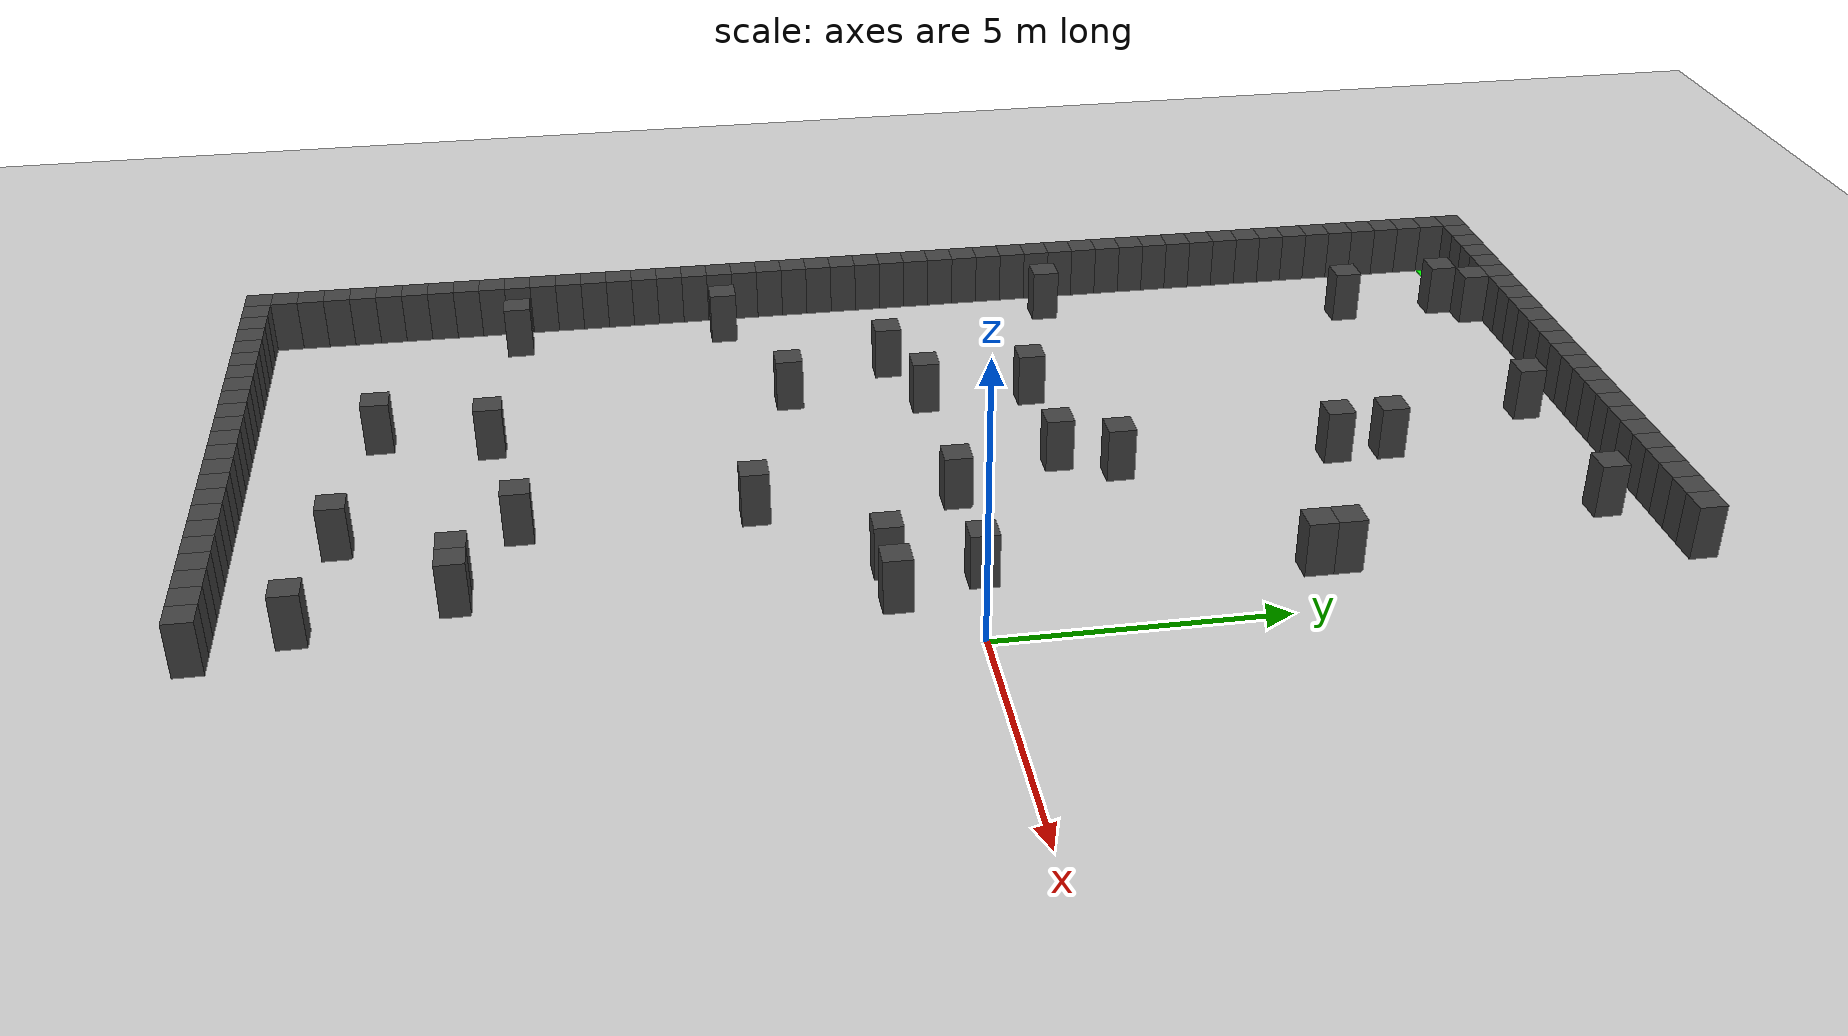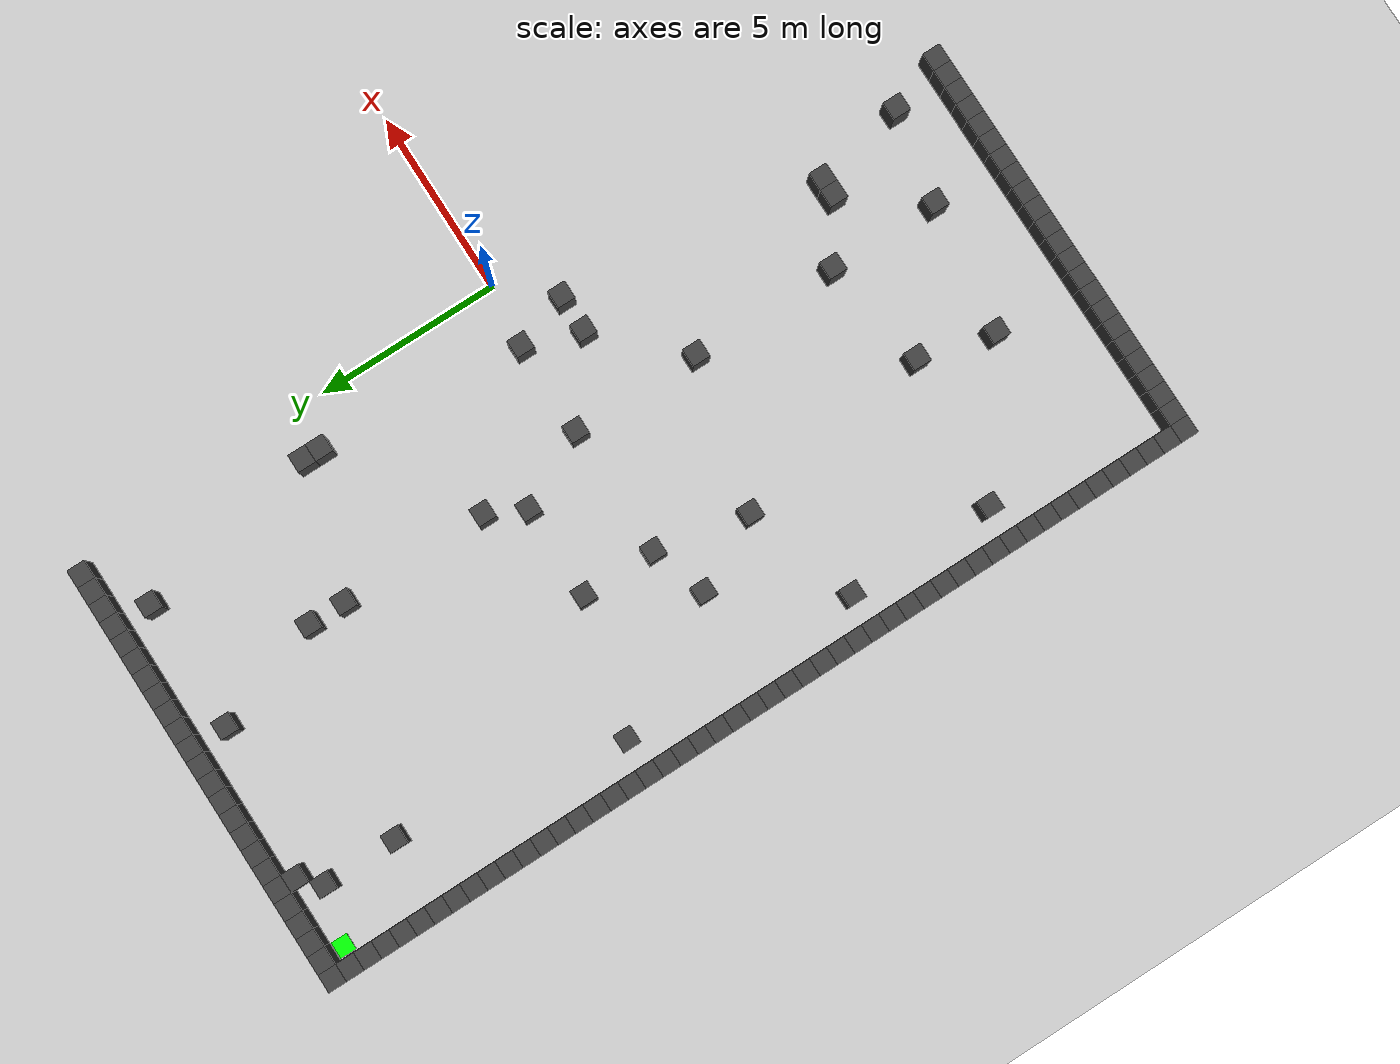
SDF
<sdf version="1.7">
 <world name="map_61">
  <model name="ground_plane">
   <static>true</static>
   <link name="link">
    <collision name="collision">
     <geometry><plane><normal>0 0 1</normal><size>200 200</size></plane></geometry>
    </collision>
    <visual name="visual">
     <geometry><plane><normal>0 0 1</normal><size>200 200</size></plane></geometry>
     <material><ambient>0.8 0.8 0.8 1</ambient><diffuse>0.8 0.8 0.8 1</diffuse></material>
    </visual>
   </link>
  </model>
  <model name="maze_environment">
   <static>true</static>
   <link name="wall_0">
    <pose>-12.250 12.250 0.500 0 0 0</pose>
    <collision name="col"><geometry><box><size>0.5 0.5 1.0</size></box></geometry></collision>
    <visual name="vis">
     <geometry><box><size>0.5 0.5 1.0</size></box></geometry>
     <material><ambient>0.15 0.15 0.15 1</ambient><diffuse>0.25 0.25 0.25 1</diffuse></material>
    </visual>
   </link>
   <link name="wall_1">
    <pose>-11.750 12.250 0.500 0 0 0</pose>
    <collision name="col"><geometry><box><size>0.5 0.5 1.0</size></box></geometry></collision>
    <visual name="vis">
     <geometry><box><size>0.5 0.5 1.0</size></box></geometry>
     <material><ambient>0.15 0.15 0.15 1</ambient><diffuse>0.25 0.25 0.25 1</diffuse></material>
    </visual>
   </link>
   <link name="wall_2">
    <pose>-11.250 12.250 0.500 0 0 0</pose>
    <collision name="col"><geometry><box><size>0.5 0.5 1.0</size></box></geometry></collision>
    <visual name="vis">
     <geometry><box><size>0.5 0.5 1.0</size></box></geometry>
     <material><ambient>0.15 0.15 0.15 1</ambient><diffuse>0.25 0.25 0.25 1</diffuse></material>
    </visual>
   </link>
   <link name="wall_3">
    <pose>-10.750 12.250 0.500 0 0 0</pose>
    <collision name="col"><geometry><box><size>0.5 0.5 1.0</size></box></geometry></collision>
    <visual name="vis">
     <geometry><box><size>0.5 0.5 1.0</size></box></geometry>
     <material><ambient>0.15 0.15 0.15 1</ambient><diffuse>0.25 0.25 0.25 1</diffuse></material>
    </visual>
   </link>
   <link name="wall_4">
    <pose>-10.250 12.250 0.500 0 0 0</pose>
    <collision name="col"><geometry><box><size>0.5 0.5 1.0</size></box></geometry></collision>
    <visual name="vis">
     <geometry><box><size>0.5 0.5 1.0</size></box></geometry>
     <material><ambient>0.15 0.15 0.15 1</ambient><diffuse>0.25 0.25 0.25 1</diffuse></material>
    </visual>
   </link>
   <link name="wall_5">
    <pose>-9.750 12.250 0.500 0 0 0</pose>
    <collision name="col"><geometry><box><size>0.5 0.5 1.0</size></box></geometry></collision>
    <visual name="vis">
     <geometry><box><size>0.5 0.5 1.0</size></box></geometry>
     <material><ambient>0.15 0.15 0.15 1</ambient><diffuse>0.25 0.25 0.25 1</diffuse></material>
    </visual>
   </link>
   <link name="wall_6">
    <pose>-9.250 12.250 0.500 0 0 0</pose>
    <collision name="col"><geometry><box><size>0.5 0.5 1.0</size></box></geometry></collision>
    <visual name="vis">
     <geometry><box><size>0.5 0.5 1.0</size></box></geometry>
     <material><ambient>0.15 0.15 0.15 1</ambient><diffuse>0.25 0.25 0.25 1</diffuse></material>
    </visual>
   </link>
   <link name="wall_7">
    <pose>-8.750 12.250 0.500 0 0 0</pose>
    <collision name="col"><geometry><box><size>0.5 0.5 1.0</size></box></geometry></collision>
    <visual name="vis">
     <geometry><box><size>0.5 0.5 1.0</size></box></geometry>
     <material><ambient>0.15 0.15 0.15 1</ambient><diffuse>0.25 0.25 0.25 1</diffuse></material>
    </visual>
   </link>
   <link name="wall_8">
    <pose>-8.250 12.250 0.500 0 0 0</pose>
    <collision name="col"><geometry><box><size>0.5 0.5 1.0</size></box></geometry></collision>
    <visual name="vis">
     <geometry><box><size>0.5 0.5 1.0</size></box></geometry>
     <material><ambient>0.15 0.15 0.15 1</ambient><diffuse>0.25 0.25 0.25 1</diffuse></material>
    </visual>
   </link>
   <link name="wall_9">
    <pose>-7.750 12.250 0.500 0 0 0</pose>
    <collision name="col"><geometry><box><size>0.5 0.5 1.0</size></box></geometry></collision>
    <visual name="vis">
     <geometry><box><size>0.5 0.5 1.0</size></box></geometry>
     <material><ambient>0.15 0.15 0.15 1</ambient><diffuse>0.25 0.25 0.25 1</diffuse></material>
    </visual>
   </link>
   <link name="wall_10">
    <pose>-7.250 12.250 0.500 0 0 0</pose>
    <collision name="col"><geometry><box><size>0.5 0.5 1.0</size></box></geometry></collision>
    <visual name="vis">
     <geometry><box><size>0.5 0.5 1.0</size></box></geometry>
     <material><ambient>0.15 0.15 0.15 1</ambient><diffuse>0.25 0.25 0.25 1</diffuse></material>
    </visual>
   </link>
   <link name="wall_11">
    <pose>-6.750 12.250 0.500 0 0 0</pose>
    <collision name="col"><geometry><box><size>0.5 0.5 1.0</size></box></geometry></collision>
    <visual name="vis">
     <geometry><box><size>0.5 0.5 1.0</size></box></geometry>
     <material><ambient>0.15 0.15 0.15 1</ambient><diffuse>0.25 0.25 0.25 1</diffuse></material>
    </visual>
   </link>
   <link name="wall_12">
    <pose>-6.250 12.250 0.500 0 0 0</pose>
    <collision name="col"><geometry><box><size>0.5 0.5 1.0</size></box></geometry></collision>
    <visual name="vis">
     <geometry><box><size>0.5 0.5 1.0</size></box></geometry>
     <material><ambient>0.15 0.15 0.15 1</ambient><diffuse>0.25 0.25 0.25 1</diffuse></material>
    </visual>
   </link>
   <link name="wall_13">
    <pose>-5.750 12.250 0.500 0 0 0</pose>
    <collision name="col"><geometry><box><size>0.5 0.5 1.0</size></box></geometry></collision>
    <visual name="vis">
     <geometry><box><size>0.5 0.5 1.0</size></box></geometry>
     <material><ambient>0.15 0.15 0.15 1</ambient><diffuse>0.25 0.25 0.25 1</diffuse></material>
    </visual>
   </link>
   <link name="wall_14">
    <pose>-5.250 12.250 0.500 0 0 0</pose>
    <collision name="col"><geometry><box><size>0.5 0.5 1.0</size></box></geometry></collision>
    <visual name="vis">
     <geometry><box><size>0.5 0.5 1.0</size></box></geometry>
     <material><ambient>0.15 0.15 0.15 1</ambient><diffuse>0.25 0.25 0.25 1</diffuse></material>
    </visual>
   </link>
   <link name="wall_15">
    <pose>-4.750 12.250 0.500 0 0 0</pose>
    <collision name="col"><geometry><box><size>0.5 0.5 1.0</size></box></geometry></collision>
    <visual name="vis">
     <geometry><box><size>0.5 0.5 1.0</size></box></geometry>
     <material><ambient>0.15 0.15 0.15 1</ambient><diffuse>0.25 0.25 0.25 1</diffuse></material>
    </visual>
   </link>
   <link name="wall_16">
    <pose>-4.250 12.250 0.500 0 0 0</pose>
    <collision name="col"><geometry><box><size>0.5 0.5 1.0</size></box></geometry></collision>
    <visual name="vis">
     <geometry><box><size>0.5 0.5 1.0</size></box></geometry>
     <material><ambient>0.15 0.15 0.15 1</ambient><diffuse>0.25 0.25 0.25 1</diffuse></material>
    </visual>
   </link>
   <link name="wall_17">
    <pose>-3.750 12.250 0.500 0 0 0</pose>
    <collision name="col"><geometry><box><size>0.5 0.5 1.0</size></box></geometry></collision>
    <visual name="vis">
     <geometry><box><size>0.5 0.5 1.0</size></box></geometry>
     <material><ambient>0.15 0.15 0.15 1</ambient><diffuse>0.25 0.25 0.25 1</diffuse></material>
    </visual>
   </link>
   <link name="wall_18">
    <pose>-3.250 12.250 0.500 0 0 0</pose>
    <collision name="col"><geometry><box><size>0.5 0.5 1.0</size></box></geometry></collision>
    <visual name="vis">
     <geometry><box><size>0.5 0.5 1.0</size></box></geometry>
     <material><ambient>0.15 0.15 0.15 1</ambient><diffuse>0.25 0.25 0.25 1</diffuse></material>
    </visual>
   </link>
   <link name="wall_19">
    <pose>-2.750 12.250 0.500 0 0 0</pose>
    <collision name="col"><geometry><box><size>0.5 0.5 1.0</size></box></geometry></collision>
    <visual name="vis">
     <geometry><box><size>0.5 0.5 1.0</size></box></geometry>
     <material><ambient>0.15 0.15 0.15 1</ambient><diffuse>0.25 0.25 0.25 1</diffuse></material>
    </visual>
   </link>
   <link name="wall_20">
    <pose>-2.250 12.250 0.500 0 0 0</pose>
    <collision name="col"><geometry><box><size>0.5 0.5 1.0</size></box></geometry></collision>
    <visual name="vis">
     <geometry><box><size>0.5 0.5 1.0</size></box></geometry>
     <material><ambient>0.15 0.15 0.15 1</ambient><diffuse>0.25 0.25 0.25 1</diffuse></material>
    </visual>
   </link>
   <link name="wall_21">
    <pose>-1.750 12.250 0.500 0 0 0</pose>
    <collision name="col"><geometry><box><size>0.5 0.5 1.0</size></box></geometry></collision>
    <visual name="vis">
     <geometry><box><size>0.5 0.5 1.0</size></box></geometry>
     <material><ambient>0.15 0.15 0.15 1</ambient><diffuse>0.25 0.25 0.25 1</diffuse></material>
    </visual>
   </link>
   <link name="wall_22">
    <pose>-1.250 12.250 0.500 0 0 0</pose>
    <collision name="col"><geometry><box><size>0.5 0.5 1.0</size></box></geometry></collision>
    <visual name="vis">
     <geometry><box><size>0.5 0.5 1.0</size></box></geometry>
     <material><ambient>0.15 0.15 0.15 1</ambient><diffuse>0.25 0.25 0.25 1</diffuse></material>
    </visual>
   </link>
   <link name="wall_23">
    <pose>-0.750 12.250 0.500 0 0 0</pose>
    <collision name="col"><geometry><box><size>0.5 0.5 1.0</size></box></geometry></collision>
    <visual name="vis">
     <geometry><box><size>0.5 0.5 1.0</size></box></geometry>
     <material><ambient>0.15 0.15 0.15 1</ambient><diffuse>0.25 0.25 0.25 1</diffuse></material>
    </visual>
   </link>
   <link name="wall_50">
    <pose>-12.250 11.750 0.500 0 0 0</pose>
    <collision name="col"><geometry><box><size>0.5 0.5 1.0</size></box></geometry></collision>
    <visual name="vis">
     <geometry><box><size>0.5 0.5 1.0</size></box></geometry>
     <material><ambient>0.15 0.15 0.15 1</ambient><diffuse>0.25 0.25 0.25 1</diffuse></material>
    </visual>
   </link>
   <link name="wall_51">
    <pose>-9.750 11.750 0.500 0 0 0</pose>
    <collision name="col"><geometry><box><size>0.5 0.5 1.0</size></box></geometry></collision>
    <visual name="vis">
     <geometry><box><size>0.5 0.5 1.0</size></box></geometry>
     <material><ambient>0.15 0.15 0.15 1</ambient><diffuse>0.25 0.25 0.25 1</diffuse></material>
    </visual>
   </link>
   <link name="wall_53">
    <pose>-12.250 11.250 0.500 0 0 0</pose>
    <collision name="col"><geometry><box><size>0.5 0.5 1.0</size></box></geometry></collision>
    <visual name="vis">
     <geometry><box><size>0.5 0.5 1.0</size></box></geometry>
     <material><ambient>0.15 0.15 0.15 1</ambient><diffuse>0.25 0.25 0.25 1</diffuse></material>
    </visual>
   </link>
   <link name="wall_54">
    <pose>-10.250 11.250 0.500 0 0 0</pose>
    <collision name="col"><geometry><box><size>0.5 0.5 1.0</size></box></geometry></collision>
    <visual name="vis">
     <geometry><box><size>0.5 0.5 1.0</size></box></geometry>
     <material><ambient>0.15 0.15 0.15 1</ambient><diffuse>0.25 0.25 0.25 1</diffuse></material>
    </visual>
   </link>
   <link name="wall_55">
    <pose>-5.750 11.250 0.500 0 0 0</pose>
    <collision name="col"><geometry><box><size>0.5 0.5 1.0</size></box></geometry></collision>
    <visual name="vis">
     <geometry><box><size>0.5 0.5 1.0</size></box></geometry>
     <material><ambient>0.15 0.15 0.15 1</ambient><diffuse>0.25 0.25 0.25 1</diffuse></material>
    </visual>
   </link>
   <link name="wall_56">
    <pose>-2.250 11.250 0.500 0 0 0</pose>
    <collision name="col"><geometry><box><size>0.5 0.5 1.0</size></box></geometry></collision>
    <visual name="vis">
     <geometry><box><size>0.5 0.5 1.0</size></box></geometry>
     <material><ambient>0.15 0.15 0.15 1</ambient><diffuse>0.25 0.25 0.25 1</diffuse></material>
    </visual>
   </link>
   <link name="wall_58">
    <pose>-12.250 10.750 0.500 0 0 0</pose>
    <collision name="col"><geometry><box><size>0.5 0.5 1.0</size></box></geometry></collision>
    <visual name="vis">
     <geometry><box><size>0.5 0.5 1.0</size></box></geometry>
     <material><ambient>0.15 0.15 0.15 1</ambient><diffuse>0.25 0.25 0.25 1</diffuse></material>
    </visual>
   </link>
   <link name="wall_61">
    <pose>-12.250 10.250 0.500 0 0 0</pose>
    <collision name="col"><geometry><box><size>0.5 0.5 1.0</size></box></geometry></collision>
    <visual name="vis">
     <geometry><box><size>0.5 0.5 1.0</size></box></geometry>
     <material><ambient>0.15 0.15 0.15 1</ambient><diffuse>0.25 0.25 0.25 1</diffuse></material>
    </visual>
   </link>
   <link name="wall_65">
    <pose>-12.250 9.750 0.500 0 0 0</pose>
    <collision name="col"><geometry><box><size>0.5 0.5 1.0</size></box></geometry></collision>
    <visual name="vis">
     <geometry><box><size>0.5 0.5 1.0</size></box></geometry>
     <material><ambient>0.15 0.15 0.15 1</ambient><diffuse>0.25 0.25 0.25 1</diffuse></material>
    </visual>
   </link>
   <link name="wall_68">
    <pose>-12.250 9.250 0.500 0 0 0</pose>
    <collision name="col"><geometry><box><size>0.5 0.5 1.0</size></box></geometry></collision>
    <visual name="vis">
     <geometry><box><size>0.5 0.5 1.0</size></box></geometry>
     <material><ambient>0.15 0.15 0.15 1</ambient><diffuse>0.25 0.25 0.25 1</diffuse></material>
    </visual>
   </link>
   <link name="wall_69">
    <pose>-10.250 9.250 0.500 0 0 0</pose>
    <collision name="col"><geometry><box><size>0.5 0.5 1.0</size></box></geometry></collision>
    <visual name="vis">
     <geometry><box><size>0.5 0.5 1.0</size></box></geometry>
     <material><ambient>0.15 0.15 0.15 1</ambient><diffuse>0.25 0.25 0.25 1</diffuse></material>
    </visual>
   </link>
   <link name="wall_71">
    <pose>-12.250 8.750 0.500 0 0 0</pose>
    <collision name="col"><geometry><box><size>0.5 0.5 1.0</size></box></geometry></collision>
    <visual name="vis">
     <geometry><box><size>0.5 0.5 1.0</size></box></geometry>
     <material><ambient>0.15 0.15 0.15 1</ambient><diffuse>0.25 0.25 0.25 1</diffuse></material>
    </visual>
   </link>
   <link name="wall_73">
    <pose>-12.250 8.250 0.500 0 0 0</pose>
    <collision name="col"><geometry><box><size>0.5 0.5 1.0</size></box></geometry></collision>
    <visual name="vis">
     <geometry><box><size>0.5 0.5 1.0</size></box></geometry>
     <material><ambient>0.15 0.15 0.15 1</ambient><diffuse>0.25 0.25 0.25 1</diffuse></material>
    </visual>
   </link>
   <link name="wall_74">
    <pose>-4.750 8.250 0.500 0 0 0</pose>
    <collision name="col"><geometry><box><size>0.5 0.5 1.0</size></box></geometry></collision>
    <visual name="vis">
     <geometry><box><size>0.5 0.5 1.0</size></box></geometry>
     <material><ambient>0.15 0.15 0.15 1</ambient><diffuse>0.25 0.25 0.25 1</diffuse></material>
    </visual>
   </link>
   <link name="wall_76">
    <pose>-12.250 7.750 0.500 0 0 0</pose>
    <collision name="col"><geometry><box><size>0.5 0.5 1.0</size></box></geometry></collision>
    <visual name="vis">
     <geometry><box><size>0.5 0.5 1.0</size></box></geometry>
     <material><ambient>0.15 0.15 0.15 1</ambient><diffuse>0.25 0.25 0.25 1</diffuse></material>
    </visual>
   </link>
   <link name="wall_78">
    <pose>-12.250 7.250 0.500 0 0 0</pose>
    <collision name="col"><geometry><box><size>0.5 0.5 1.0</size></box></geometry></collision>
    <visual name="vis">
     <geometry><box><size>0.5 0.5 1.0</size></box></geometry>
     <material><ambient>0.15 0.15 0.15 1</ambient><diffuse>0.25 0.25 0.25 1</diffuse></material>
    </visual>
   </link>
   <link name="wall_79">
    <pose>-4.750 7.250 0.500 0 0 0</pose>
    <collision name="col"><geometry><box><size>0.5 0.5 1.0</size></box></geometry></collision>
    <visual name="vis">
     <geometry><box><size>0.5 0.5 1.0</size></box></geometry>
     <material><ambient>0.15 0.15 0.15 1</ambient><diffuse>0.25 0.25 0.25 1</diffuse></material>
    </visual>
   </link>
   <link name="wall_83">
    <pose>-12.250 6.750 0.500 0 0 0</pose>
    <collision name="col"><geometry><box><size>0.5 0.5 1.0</size></box></geometry></collision>
    <visual name="vis">
     <geometry><box><size>0.5 0.5 1.0</size></box></geometry>
     <material><ambient>0.15 0.15 0.15 1</ambient><diffuse>0.25 0.25 0.25 1</diffuse></material>
    </visual>
   </link>
   <link name="wall_85">
    <pose>-12.250 6.250 0.500 0 0 0</pose>
    <collision name="col"><geometry><box><size>0.5 0.5 1.0</size></box></geometry></collision>
    <visual name="vis">
     <geometry><box><size>0.5 0.5 1.0</size></box></geometry>
     <material><ambient>0.15 0.15 0.15 1</ambient><diffuse>0.25 0.25 0.25 1</diffuse></material>
    </visual>
   </link>
   <link name="wall_86">
    <pose>-1.250 6.250 0.500 0 0 0</pose>
    <collision name="col"><geometry><box><size>0.5 0.5 1.0</size></box></geometry></collision>
    <visual name="vis">
     <geometry><box><size>0.5 0.5 1.0</size></box></geometry>
     <material><ambient>0.15 0.15 0.15 1</ambient><diffuse>0.25 0.25 0.25 1</diffuse></material>
    </visual>
   </link>
   <link name="wall_88">
    <pose>-12.250 5.750 0.500 0 0 0</pose>
    <collision name="col"><geometry><box><size>0.5 0.5 1.0</size></box></geometry></collision>
    <visual name="vis">
     <geometry><box><size>0.5 0.5 1.0</size></box></geometry>
     <material><ambient>0.15 0.15 0.15 1</ambient><diffuse>0.25 0.25 0.25 1</diffuse></material>
    </visual>
   </link>
   <link name="wall_89">
    <pose>-1.250 5.750 0.500 0 0 0</pose>
    <collision name="col"><geometry><box><size>0.5 0.5 1.0</size></box></geometry></collision>
    <visual name="vis">
     <geometry><box><size>0.5 0.5 1.0</size></box></geometry>
     <material><ambient>0.15 0.15 0.15 1</ambient><diffuse>0.25 0.25 0.25 1</diffuse></material>
    </visual>
   </link>
   <link name="wall_91">
    <pose>-12.250 5.250 0.500 0 0 0</pose>
    <collision name="col"><geometry><box><size>0.5 0.5 1.0</size></box></geometry></collision>
    <visual name="vis">
     <geometry><box><size>0.5 0.5 1.0</size></box></geometry>
     <material><ambient>0.15 0.15 0.15 1</ambient><diffuse>0.25 0.25 0.25 1</diffuse></material>
    </visual>
   </link>
   <link name="wall_93">
    <pose>-12.250 4.750 0.500 0 0 0</pose>
    <collision name="col"><geometry><box><size>0.5 0.5 1.0</size></box></geometry></collision>
    <visual name="vis">
     <geometry><box><size>0.5 0.5 1.0</size></box></geometry>
     <material><ambient>0.15 0.15 0.15 1</ambient><diffuse>0.25 0.25 0.25 1</diffuse></material>
    </visual>
   </link>
   <link name="wall_96">
    <pose>-12.250 4.250 0.500 0 0 0</pose>
    <collision name="col"><geometry><box><size>0.5 0.5 1.0</size></box></geometry></collision>
    <visual name="vis">
     <geometry><box><size>0.5 0.5 1.0</size></box></geometry>
     <material><ambient>0.15 0.15 0.15 1</ambient><diffuse>0.25 0.25 0.25 1</diffuse></material>
    </visual>
   </link>
   <link name="wall_98">
    <pose>-12.250 3.750 0.500 0 0 0</pose>
    <collision name="col"><geometry><box><size>0.5 0.5 1.0</size></box></geometry></collision>
    <visual name="vis">
     <geometry><box><size>0.5 0.5 1.0</size></box></geometry>
     <material><ambient>0.15 0.15 0.15 1</ambient><diffuse>0.25 0.25 0.25 1</diffuse></material>
    </visual>
   </link>
   <link name="wall_101">
    <pose>-12.250 3.250 0.500 0 0 0</pose>
    <collision name="col"><geometry><box><size>0.5 0.5 1.0</size></box></geometry></collision>
    <visual name="vis">
     <geometry><box><size>0.5 0.5 1.0</size></box></geometry>
     <material><ambient>0.15 0.15 0.15 1</ambient><diffuse>0.25 0.25 0.25 1</diffuse></material>
    </visual>
   </link>
   <link name="wall_102">
    <pose>-11.250 3.250 0.500 0 0 0</pose>
    <collision name="col"><geometry><box><size>0.5 0.5 1.0</size></box></geometry></collision>
    <visual name="vis">
     <geometry><box><size>0.5 0.5 1.0</size></box></geometry>
     <material><ambient>0.15 0.15 0.15 1</ambient><diffuse>0.25 0.25 0.25 1</diffuse></material>
    </visual>
   </link>
   <link name="wall_103">
    <pose>-4.750 3.250 0.500 0 0 0</pose>
    <collision name="col"><geometry><box><size>0.5 0.5 1.0</size></box></geometry></collision>
    <visual name="vis">
     <geometry><box><size>0.5 0.5 1.0</size></box></geometry>
     <material><ambient>0.15 0.15 0.15 1</ambient><diffuse>0.25 0.25 0.25 1</diffuse></material>
    </visual>
   </link>
   <link name="wall_105">
    <pose>-12.250 2.750 0.500 0 0 0</pose>
    <collision name="col"><geometry><box><size>0.5 0.5 1.0</size></box></geometry></collision>
    <visual name="vis">
     <geometry><box><size>0.5 0.5 1.0</size></box></geometry>
     <material><ambient>0.15 0.15 0.15 1</ambient><diffuse>0.25 0.25 0.25 1</diffuse></material>
    </visual>
   </link>
   <link name="wall_107">
    <pose>-12.250 2.250 0.500 0 0 0</pose>
    <collision name="col"><geometry><box><size>0.5 0.5 1.0</size></box></geometry></collision>
    <visual name="vis">
     <geometry><box><size>0.5 0.5 1.0</size></box></geometry>
     <material><ambient>0.15 0.15 0.15 1</ambient><diffuse>0.25 0.25 0.25 1</diffuse></material>
    </visual>
   </link>
   <link name="wall_108">
    <pose>-7.750 2.250 0.500 0 0 0</pose>
    <collision name="col"><geometry><box><size>0.5 0.5 1.0</size></box></geometry></collision>
    <visual name="vis">
     <geometry><box><size>0.5 0.5 1.0</size></box></geometry>
     <material><ambient>0.15 0.15 0.15 1</ambient><diffuse>0.25 0.25 0.25 1</diffuse></material>
    </visual>
   </link>
   <link name="wall_109">
    <pose>-5.250 2.250 0.500 0 0 0</pose>
    <collision name="col"><geometry><box><size>0.5 0.5 1.0</size></box></geometry></collision>
    <visual name="vis">
     <geometry><box><size>0.5 0.5 1.0</size></box></geometry>
     <material><ambient>0.15 0.15 0.15 1</ambient><diffuse>0.25 0.25 0.25 1</diffuse></material>
    </visual>
   </link>
   <link name="wall_111">
    <pose>-12.250 1.750 0.500 0 0 0</pose>
    <collision name="col"><geometry><box><size>0.5 0.5 1.0</size></box></geometry></collision>
    <visual name="vis">
     <geometry><box><size>0.5 0.5 1.0</size></box></geometry>
     <material><ambient>0.15 0.15 0.15 1</ambient><diffuse>0.25 0.25 0.25 1</diffuse></material>
    </visual>
   </link>
   <link name="wall_113">
    <pose>-12.250 1.250 0.500 0 0 0</pose>
    <collision name="col"><geometry><box><size>0.5 0.5 1.0</size></box></geometry></collision>
    <visual name="vis">
     <geometry><box><size>0.5 0.5 1.0</size></box></geometry>
     <material><ambient>0.15 0.15 0.15 1</ambient><diffuse>0.25 0.25 0.25 1</diffuse></material>
    </visual>
   </link>
   <link name="wall_115">
    <pose>-12.250 0.750 0.500 0 0 0</pose>
    <collision name="col"><geometry><box><size>0.5 0.5 1.0</size></box></geometry></collision>
    <visual name="vis">
     <geometry><box><size>0.5 0.5 1.0</size></box></geometry>
     <material><ambient>0.15 0.15 0.15 1</ambient><diffuse>0.25 0.25 0.25 1</diffuse></material>
    </visual>
   </link>
   <link name="wall_118">
    <pose>-12.250 0.250 0.500 0 0 0</pose>
    <collision name="col"><geometry><box><size>0.5 0.5 1.0</size></box></geometry></collision>
    <visual name="vis">
     <geometry><box><size>0.5 0.5 1.0</size></box></geometry>
     <material><ambient>0.15 0.15 0.15 1</ambient><diffuse>0.25 0.25 0.25 1</diffuse></material>
    </visual>
   </link>
   <link name="wall_119">
    <pose>-7.750 0.250 0.500 0 0 0</pose>
    <collision name="col"><geometry><box><size>0.5 0.5 1.0</size></box></geometry></collision>
    <visual name="vis">
     <geometry><box><size>0.5 0.5 1.0</size></box></geometry>
     <material><ambient>0.15 0.15 0.15 1</ambient><diffuse>0.25 0.25 0.25 1</diffuse></material>
    </visual>
   </link>
   <link name="wall_120">
    <pose>-4.250 0.250 0.500 0 0 0</pose>
    <collision name="col"><geometry><box><size>0.5 0.5 1.0</size></box></geometry></collision>
    <visual name="vis">
     <geometry><box><size>0.5 0.5 1.0</size></box></geometry>
     <material><ambient>0.15 0.15 0.15 1</ambient><diffuse>0.25 0.25 0.25 1</diffuse></material>
    </visual>
   </link>
   <link name="wall_121">
    <pose>-1.750 0.250 0.500 0 0 0</pose>
    <collision name="col"><geometry><box><size>0.5 0.5 1.0</size></box></geometry></collision>
    <visual name="vis">
     <geometry><box><size>0.5 0.5 1.0</size></box></geometry>
     <material><ambient>0.15 0.15 0.15 1</ambient><diffuse>0.25 0.25 0.25 1</diffuse></material>
    </visual>
   </link>
   <link name="wall_124">
    <pose>-12.250 -0.250 0.500 0 0 0</pose>
    <collision name="col"><geometry><box><size>0.5 0.5 1.0</size></box></geometry></collision>
    <visual name="vis">
     <geometry><box><size>0.5 0.5 1.0</size></box></geometry>
     <material><ambient>0.15 0.15 0.15 1</ambient><diffuse>0.25 0.25 0.25 1</diffuse></material>
    </visual>
   </link>
   <link name="wall_125">
    <pose>-9.250 -0.250 0.500 0 0 0</pose>
    <collision name="col"><geometry><box><size>0.5 0.5 1.0</size></box></geometry></collision>
    <visual name="vis">
     <geometry><box><size>0.5 0.5 1.0</size></box></geometry>
     <material><ambient>0.15 0.15 0.15 1</ambient><diffuse>0.25 0.25 0.25 1</diffuse></material>
    </visual>
   </link>
   <link name="wall_127">
    <pose>-12.250 -0.750 0.500 0 0 0</pose>
    <collision name="col"><geometry><box><size>0.5 0.5 1.0</size></box></geometry></collision>
    <visual name="vis">
     <geometry><box><size>0.5 0.5 1.0</size></box></geometry>
     <material><ambient>0.15 0.15 0.15 1</ambient><diffuse>0.25 0.25 0.25 1</diffuse></material>
    </visual>
   </link>
   <link name="wall_129">
    <pose>-12.250 -1.250 0.500 0 0 0</pose>
    <collision name="col"><geometry><box><size>0.5 0.5 1.0</size></box></geometry></collision>
    <visual name="vis">
     <geometry><box><size>0.5 0.5 1.0</size></box></geometry>
     <material><ambient>0.15 0.15 0.15 1</ambient><diffuse>0.25 0.25 0.25 1</diffuse></material>
    </visual>
   </link>
   <link name="wall_130">
    <pose>-2.250 -1.250 0.500 0 0 0</pose>
    <collision name="col"><geometry><box><size>0.5 0.5 1.0</size></box></geometry></collision>
    <visual name="vis">
     <geometry><box><size>0.5 0.5 1.0</size></box></geometry>
     <material><ambient>0.15 0.15 0.15 1</ambient><diffuse>0.25 0.25 0.25 1</diffuse></material>
    </visual>
   </link>
   <link name="wall_131">
    <pose>-1.250 -1.250 0.500 0 0 0</pose>
    <collision name="col"><geometry><box><size>0.5 0.5 1.0</size></box></geometry></collision>
    <visual name="vis">
     <geometry><box><size>0.5 0.5 1.0</size></box></geometry>
     <material><ambient>0.15 0.15 0.15 1</ambient><diffuse>0.25 0.25 0.25 1</diffuse></material>
    </visual>
   </link>
   <link name="wall_133">
    <pose>-12.250 -1.750 0.500 0 0 0</pose>
    <collision name="col"><geometry><box><size>0.5 0.5 1.0</size></box></geometry></collision>
    <visual name="vis">
     <geometry><box><size>0.5 0.5 1.0</size></box></geometry>
     <material><ambient>0.15 0.15 0.15 1</ambient><diffuse>0.25 0.25 0.25 1</diffuse></material>
    </visual>
   </link>
   <link name="wall_136">
    <pose>-12.250 -2.250 0.500 0 0 0</pose>
    <collision name="col"><geometry><box><size>0.5 0.5 1.0</size></box></geometry></collision>
    <visual name="vis">
     <geometry><box><size>0.5 0.5 1.0</size></box></geometry>
     <material><ambient>0.15 0.15 0.15 1</ambient><diffuse>0.25 0.25 0.25 1</diffuse></material>
    </visual>
   </link>
   <link name="wall_137">
    <pose>-8.250 -2.250 0.500 0 0 0</pose>
    <collision name="col"><geometry><box><size>0.5 0.5 1.0</size></box></geometry></collision>
    <visual name="vis">
     <geometry><box><size>0.5 0.5 1.0</size></box></geometry>
     <material><ambient>0.15 0.15 0.15 1</ambient><diffuse>0.25 0.25 0.25 1</diffuse></material>
    </visual>
   </link>
   <link name="wall_141">
    <pose>-12.250 -2.750 0.500 0 0 0</pose>
    <collision name="col"><geometry><box><size>0.5 0.5 1.0</size></box></geometry></collision>
    <visual name="vis">
     <geometry><box><size>0.5 0.5 1.0</size></box></geometry>
     <material><ambient>0.15 0.15 0.15 1</ambient><diffuse>0.25 0.25 0.25 1</diffuse></material>
    </visual>
   </link>
   <link name="wall_145">
    <pose>-12.250 -3.250 0.500 0 0 0</pose>
    <collision name="col"><geometry><box><size>0.5 0.5 1.0</size></box></geometry></collision>
    <visual name="vis">
     <geometry><box><size>0.5 0.5 1.0</size></box></geometry>
     <material><ambient>0.15 0.15 0.15 1</ambient><diffuse>0.25 0.25 0.25 1</diffuse></material>
    </visual>
   </link>
   <link name="wall_146">
    <pose>-11.250 -3.250 0.500 0 0 0</pose>
    <collision name="col"><geometry><box><size>0.5 0.5 1.0</size></box></geometry></collision>
    <visual name="vis">
     <geometry><box><size>0.5 0.5 1.0</size></box></geometry>
     <material><ambient>0.15 0.15 0.15 1</ambient><diffuse>0.25 0.25 0.25 1</diffuse></material>
    </visual>
   </link>
   <link name="wall_147">
    <pose>-4.250 -3.250 0.500 0 0 0</pose>
    <collision name="col"><geometry><box><size>0.5 0.5 1.0</size></box></geometry></collision>
    <visual name="vis">
     <geometry><box><size>0.5 0.5 1.0</size></box></geometry>
     <material><ambient>0.15 0.15 0.15 1</ambient><diffuse>0.25 0.25 0.25 1</diffuse></material>
    </visual>
   </link>
   <link name="wall_151">
    <pose>-12.250 -3.750 0.500 0 0 0</pose>
    <collision name="col"><geometry><box><size>0.5 0.5 1.0</size></box></geometry></collision>
    <visual name="vis">
     <geometry><box><size>0.5 0.5 1.0</size></box></geometry>
     <material><ambient>0.15 0.15 0.15 1</ambient><diffuse>0.25 0.25 0.25 1</diffuse></material>
    </visual>
   </link>
   <link name="wall_153">
    <pose>-12.250 -4.250 0.500 0 0 0</pose>
    <collision name="col"><geometry><box><size>0.5 0.5 1.0</size></box></geometry></collision>
    <visual name="vis">
     <geometry><box><size>0.5 0.5 1.0</size></box></geometry>
     <material><ambient>0.15 0.15 0.15 1</ambient><diffuse>0.25 0.25 0.25 1</diffuse></material>
    </visual>
   </link>
   <link name="wall_155">
    <pose>-12.250 -4.750 0.500 0 0 0</pose>
    <collision name="col"><geometry><box><size>0.5 0.5 1.0</size></box></geometry></collision>
    <visual name="vis">
     <geometry><box><size>0.5 0.5 1.0</size></box></geometry>
     <material><ambient>0.15 0.15 0.15 1</ambient><diffuse>0.25 0.25 0.25 1</diffuse></material>
    </visual>
   </link>
   <link name="wall_158">
    <pose>-12.250 -5.250 0.500 0 0 0</pose>
    <collision name="col"><geometry><box><size>0.5 0.5 1.0</size></box></geometry></collision>
    <visual name="vis">
     <geometry><box><size>0.5 0.5 1.0</size></box></geometry>
     <material><ambient>0.15 0.15 0.15 1</ambient><diffuse>0.25 0.25 0.25 1</diffuse></material>
    </visual>
   </link>
   <link name="wall_160">
    <pose>-12.250 -5.750 0.500 0 0 0</pose>
    <collision name="col"><geometry><box><size>0.5 0.5 1.0</size></box></geometry></collision>
    <visual name="vis">
     <geometry><box><size>0.5 0.5 1.0</size></box></geometry>
     <material><ambient>0.15 0.15 0.15 1</ambient><diffuse>0.25 0.25 0.25 1</diffuse></material>
    </visual>
   </link>
   <link name="wall_163">
    <pose>-12.250 -6.250 0.500 0 0 0</pose>
    <collision name="col"><geometry><box><size>0.5 0.5 1.0</size></box></geometry></collision>
    <visual name="vis">
     <geometry><box><size>0.5 0.5 1.0</size></box></geometry>
     <material><ambient>0.15 0.15 0.15 1</ambient><diffuse>0.25 0.25 0.25 1</diffuse></material>
    </visual>
   </link>
   <link name="wall_166">
    <pose>-12.250 -6.750 0.500 0 0 0</pose>
    <collision name="col"><geometry><box><size>0.5 0.5 1.0</size></box></geometry></collision>
    <visual name="vis">
     <geometry><box><size>0.5 0.5 1.0</size></box></geometry>
     <material><ambient>0.15 0.15 0.15 1</ambient><diffuse>0.25 0.25 0.25 1</diffuse></material>
    </visual>
   </link>
   <link name="wall_168">
    <pose>-12.250 -7.250 0.500 0 0 0</pose>
    <collision name="col"><geometry><box><size>0.5 0.5 1.0</size></box></geometry></collision>
    <visual name="vis">
     <geometry><box><size>0.5 0.5 1.0</size></box></geometry>
     <material><ambient>0.15 0.15 0.15 1</ambient><diffuse>0.25 0.25 0.25 1</diffuse></material>
    </visual>
   </link>
   <link name="wall_169">
    <pose>-11.250 -7.250 0.500 0 0 0</pose>
    <collision name="col"><geometry><box><size>0.5 0.5 1.0</size></box></geometry></collision>
    <visual name="vis">
     <geometry><box><size>0.5 0.5 1.0</size></box></geometry>
     <material><ambient>0.15 0.15 0.15 1</ambient><diffuse>0.25 0.25 0.25 1</diffuse></material>
    </visual>
   </link>
   <link name="wall_170">
    <pose>-4.250 -7.250 0.500 0 0 0</pose>
    <collision name="col"><geometry><box><size>0.5 0.5 1.0</size></box></geometry></collision>
    <visual name="vis">
     <geometry><box><size>0.5 0.5 1.0</size></box></geometry>
     <material><ambient>0.15 0.15 0.15 1</ambient><diffuse>0.25 0.25 0.25 1</diffuse></material>
    </visual>
   </link>
   <link name="wall_172">
    <pose>-12.250 -7.750 0.500 0 0 0</pose>
    <collision name="col"><geometry><box><size>0.5 0.5 1.0</size></box></geometry></collision>
    <visual name="vis">
     <geometry><box><size>0.5 0.5 1.0</size></box></geometry>
     <material><ambient>0.15 0.15 0.15 1</ambient><diffuse>0.25 0.25 0.25 1</diffuse></material>
    </visual>
   </link>
   <link name="wall_173">
    <pose>-7.250 -7.750 0.500 0 0 0</pose>
    <collision name="col"><geometry><box><size>0.5 0.5 1.0</size></box></geometry></collision>
    <visual name="vis">
     <geometry><box><size>0.5 0.5 1.0</size></box></geometry>
     <material><ambient>0.15 0.15 0.15 1</ambient><diffuse>0.25 0.25 0.25 1</diffuse></material>
    </visual>
   </link>
   <link name="wall_175">
    <pose>-12.250 -8.250 0.500 0 0 0</pose>
    <collision name="col"><geometry><box><size>0.5 0.5 1.0</size></box></geometry></collision>
    <visual name="vis">
     <geometry><box><size>0.5 0.5 1.0</size></box></geometry>
     <material><ambient>0.15 0.15 0.15 1</ambient><diffuse>0.25 0.25 0.25 1</diffuse></material>
    </visual>
   </link>
   <link name="wall_176">
    <pose>-2.750 -8.250 0.500 0 0 0</pose>
    <collision name="col"><geometry><box><size>0.5 0.5 1.0</size></box></geometry></collision>
    <visual name="vis">
     <geometry><box><size>0.5 0.5 1.0</size></box></geometry>
     <material><ambient>0.15 0.15 0.15 1</ambient><diffuse>0.25 0.25 0.25 1</diffuse></material>
    </visual>
   </link>
   <link name="wall_177">
    <pose>-2.250 -8.250 0.500 0 0 0</pose>
    <collision name="col"><geometry><box><size>0.5 0.5 1.0</size></box></geometry></collision>
    <visual name="vis">
     <geometry><box><size>0.5 0.5 1.0</size></box></geometry>
     <material><ambient>0.15 0.15 0.15 1</ambient><diffuse>0.25 0.25 0.25 1</diffuse></material>
    </visual>
   </link>
   <link name="wall_179">
    <pose>-12.250 -8.750 0.500 0 0 0</pose>
    <collision name="col"><geometry><box><size>0.5 0.5 1.0</size></box></geometry></collision>
    <visual name="vis">
     <geometry><box><size>0.5 0.5 1.0</size></box></geometry>
     <material><ambient>0.15 0.15 0.15 1</ambient><diffuse>0.25 0.25 0.25 1</diffuse></material>
    </visual>
   </link>
   <link name="wall_181">
    <pose>-12.250 -9.250 0.500 0 0 0</pose>
    <collision name="col"><geometry><box><size>0.5 0.5 1.0</size></box></geometry></collision>
    <visual name="vis">
     <geometry><box><size>0.5 0.5 1.0</size></box></geometry>
     <material><ambient>0.15 0.15 0.15 1</ambient><diffuse>0.25 0.25 0.25 1</diffuse></material>
    </visual>
   </link>
   <link name="wall_183">
    <pose>-12.250 -9.750 0.500 0 0 0</pose>
    <collision name="col"><geometry><box><size>0.5 0.5 1.0</size></box></geometry></collision>
    <visual name="vis">
     <geometry><box><size>0.5 0.5 1.0</size></box></geometry>
     <material><ambient>0.15 0.15 0.15 1</ambient><diffuse>0.25 0.25 0.25 1</diffuse></material>
    </visual>
   </link>
   <link name="wall_184">
    <pose>-7.750 -9.750 0.500 0 0 0</pose>
    <collision name="col"><geometry><box><size>0.5 0.5 1.0</size></box></geometry></collision>
    <visual name="vis">
     <geometry><box><size>0.5 0.5 1.0</size></box></geometry>
     <material><ambient>0.15 0.15 0.15 1</ambient><diffuse>0.25 0.25 0.25 1</diffuse></material>
    </visual>
   </link>
   <link name="wall_186">
    <pose>-12.250 -10.250 0.500 0 0 0</pose>
    <collision name="col"><geometry><box><size>0.5 0.5 1.0</size></box></geometry></collision>
    <visual name="vis">
     <geometry><box><size>0.5 0.5 1.0</size></box></geometry>
     <material><ambient>0.15 0.15 0.15 1</ambient><diffuse>0.25 0.25 0.25 1</diffuse></material>
    </visual>
   </link>
   <link name="wall_187">
    <pose>-4.250 -10.250 0.500 0 0 0</pose>
    <collision name="col"><geometry><box><size>0.5 0.5 1.0</size></box></geometry></collision>
    <visual name="vis">
     <geometry><box><size>0.5 0.5 1.0</size></box></geometry>
     <material><ambient>0.15 0.15 0.15 1</ambient><diffuse>0.25 0.25 0.25 1</diffuse></material>
    </visual>
   </link>
   <link name="wall_189">
    <pose>-12.250 -10.750 0.500 0 0 0</pose>
    <collision name="col"><geometry><box><size>0.5 0.5 1.0</size></box></geometry></collision>
    <visual name="vis">
     <geometry><box><size>0.5 0.5 1.0</size></box></geometry>
     <material><ambient>0.15 0.15 0.15 1</ambient><diffuse>0.25 0.25 0.25 1</diffuse></material>
    </visual>
   </link>
   <link name="wall_190">
    <pose>-1.750 -10.750 0.500 0 0 0</pose>
    <collision name="col"><geometry><box><size>0.5 0.5 1.0</size></box></geometry></collision>
    <visual name="vis">
     <geometry><box><size>0.5 0.5 1.0</size></box></geometry>
     <material><ambient>0.15 0.15 0.15 1</ambient><diffuse>0.25 0.25 0.25 1</diffuse></material>
    </visual>
   </link>
   <link name="wall_194">
    <pose>-12.250 -11.250 0.500 0 0 0</pose>
    <collision name="col"><geometry><box><size>0.5 0.5 1.0</size></box></geometry></collision>
    <visual name="vis">
     <geometry><box><size>0.5 0.5 1.0</size></box></geometry>
     <material><ambient>0.15 0.15 0.15 1</ambient><diffuse>0.25 0.25 0.25 1</diffuse></material>
    </visual>
   </link>
   <link name="wall_196">
    <pose>-12.250 -11.750 0.500 0 0 0</pose>
    <collision name="col"><geometry><box><size>0.5 0.5 1.0</size></box></geometry></collision>
    <visual name="vis">
     <geometry><box><size>0.5 0.5 1.0</size></box></geometry>
     <material><ambient>0.15 0.15 0.15 1</ambient><diffuse>0.25 0.25 0.25 1</diffuse></material>
    </visual>
   </link>
   <link name="wall_201">
    <pose>-12.250 -12.250 0.500 0 0 0</pose>
    <collision name="col"><geometry><box><size>0.5 0.5 1.0</size></box></geometry></collision>
    <visual name="vis">
     <geometry><box><size>0.5 0.5 1.0</size></box></geometry>
     <material><ambient>0.15 0.15 0.15 1</ambient><diffuse>0.25 0.25 0.25 1</diffuse></material>
    </visual>
   </link>
   <link name="wall_202">
    <pose>-11.750 -12.250 0.500 0 0 0</pose>
    <collision name="col"><geometry><box><size>0.5 0.5 1.0</size></box></geometry></collision>
    <visual name="vis">
     <geometry><box><size>0.5 0.5 1.0</size></box></geometry>
     <material><ambient>0.15 0.15 0.15 1</ambient><diffuse>0.25 0.25 0.25 1</diffuse></material>
    </visual>
   </link>
   <link name="wall_203">
    <pose>-11.250 -12.250 0.500 0 0 0</pose>
    <collision name="col"><geometry><box><size>0.5 0.5 1.0</size></box></geometry></collision>
    <visual name="vis">
     <geometry><box><size>0.5 0.5 1.0</size></box></geometry>
     <material><ambient>0.15 0.15 0.15 1</ambient><diffuse>0.25 0.25 0.25 1</diffuse></material>
    </visual>
   </link>
   <link name="wall_204">
    <pose>-10.750 -12.250 0.500 0 0 0</pose>
    <collision name="col"><geometry><box><size>0.5 0.5 1.0</size></box></geometry></collision>
    <visual name="vis">
     <geometry><box><size>0.5 0.5 1.0</size></box></geometry>
     <material><ambient>0.15 0.15 0.15 1</ambient><diffuse>0.25 0.25 0.25 1</diffuse></material>
    </visual>
   </link>
   <link name="wall_205">
    <pose>-10.250 -12.250 0.500 0 0 0</pose>
    <collision name="col"><geometry><box><size>0.5 0.5 1.0</size></box></geometry></collision>
    <visual name="vis">
     <geometry><box><size>0.5 0.5 1.0</size></box></geometry>
     <material><ambient>0.15 0.15 0.15 1</ambient><diffuse>0.25 0.25 0.25 1</diffuse></material>
    </visual>
   </link>
   <link name="wall_206">
    <pose>-9.750 -12.250 0.500 0 0 0</pose>
    <collision name="col"><geometry><box><size>0.5 0.5 1.0</size></box></geometry></collision>
    <visual name="vis">
     <geometry><box><size>0.5 0.5 1.0</size></box></geometry>
     <material><ambient>0.15 0.15 0.15 1</ambient><diffuse>0.25 0.25 0.25 1</diffuse></material>
    </visual>
   </link>
   <link name="wall_207">
    <pose>-9.250 -12.250 0.500 0 0 0</pose>
    <collision name="col"><geometry><box><size>0.5 0.5 1.0</size></box></geometry></collision>
    <visual name="vis">
     <geometry><box><size>0.5 0.5 1.0</size></box></geometry>
     <material><ambient>0.15 0.15 0.15 1</ambient><diffuse>0.25 0.25 0.25 1</diffuse></material>
    </visual>
   </link>
   <link name="wall_208">
    <pose>-8.750 -12.250 0.500 0 0 0</pose>
    <collision name="col"><geometry><box><size>0.5 0.5 1.0</size></box></geometry></collision>
    <visual name="vis">
     <geometry><box><size>0.5 0.5 1.0</size></box></geometry>
     <material><ambient>0.15 0.15 0.15 1</ambient><diffuse>0.25 0.25 0.25 1</diffuse></material>
    </visual>
   </link>
   <link name="wall_209">
    <pose>-8.250 -12.250 0.500 0 0 0</pose>
    <collision name="col"><geometry><box><size>0.5 0.5 1.0</size></box></geometry></collision>
    <visual name="vis">
     <geometry><box><size>0.5 0.5 1.0</size></box></geometry>
     <material><ambient>0.15 0.15 0.15 1</ambient><diffuse>0.25 0.25 0.25 1</diffuse></material>
    </visual>
   </link>
   <link name="wall_210">
    <pose>-7.750 -12.250 0.500 0 0 0</pose>
    <collision name="col"><geometry><box><size>0.5 0.5 1.0</size></box></geometry></collision>
    <visual name="vis">
     <geometry><box><size>0.5 0.5 1.0</size></box></geometry>
     <material><ambient>0.15 0.15 0.15 1</ambient><diffuse>0.25 0.25 0.25 1</diffuse></material>
    </visual>
   </link>
   <link name="wall_211">
    <pose>-7.250 -12.250 0.500 0 0 0</pose>
    <collision name="col"><geometry><box><size>0.5 0.5 1.0</size></box></geometry></collision>
    <visual name="vis">
     <geometry><box><size>0.5 0.5 1.0</size></box></geometry>
     <material><ambient>0.15 0.15 0.15 1</ambient><diffuse>0.25 0.25 0.25 1</diffuse></material>
    </visual>
   </link>
   <link name="wall_212">
    <pose>-6.750 -12.250 0.500 0 0 0</pose>
    <collision name="col"><geometry><box><size>0.5 0.5 1.0</size></box></geometry></collision>
    <visual name="vis">
     <geometry><box><size>0.5 0.5 1.0</size></box></geometry>
     <material><ambient>0.15 0.15 0.15 1</ambient><diffuse>0.25 0.25 0.25 1</diffuse></material>
    </visual>
   </link>
   <link name="wall_213">
    <pose>-6.250 -12.250 0.500 0 0 0</pose>
    <collision name="col"><geometry><box><size>0.5 0.5 1.0</size></box></geometry></collision>
    <visual name="vis">
     <geometry><box><size>0.5 0.5 1.0</size></box></geometry>
     <material><ambient>0.15 0.15 0.15 1</ambient><diffuse>0.25 0.25 0.25 1</diffuse></material>
    </visual>
   </link>
   <link name="wall_214">
    <pose>-5.750 -12.250 0.500 0 0 0</pose>
    <collision name="col"><geometry><box><size>0.5 0.5 1.0</size></box></geometry></collision>
    <visual name="vis">
     <geometry><box><size>0.5 0.5 1.0</size></box></geometry>
     <material><ambient>0.15 0.15 0.15 1</ambient><diffuse>0.25 0.25 0.25 1</diffuse></material>
    </visual>
   </link>
   <link name="wall_215">
    <pose>-5.250 -12.250 0.500 0 0 0</pose>
    <collision name="col"><geometry><box><size>0.5 0.5 1.0</size></box></geometry></collision>
    <visual name="vis">
     <geometry><box><size>0.5 0.5 1.0</size></box></geometry>
     <material><ambient>0.15 0.15 0.15 1</ambient><diffuse>0.25 0.25 0.25 1</diffuse></material>
    </visual>
   </link>
   <link name="wall_216">
    <pose>-4.750 -12.250 0.500 0 0 0</pose>
    <collision name="col"><geometry><box><size>0.5 0.5 1.0</size></box></geometry></collision>
    <visual name="vis">
     <geometry><box><size>0.5 0.5 1.0</size></box></geometry>
     <material><ambient>0.15 0.15 0.15 1</ambient><diffuse>0.25 0.25 0.25 1</diffuse></material>
    </visual>
   </link>
   <link name="wall_217">
    <pose>-4.250 -12.250 0.500 0 0 0</pose>
    <collision name="col"><geometry><box><size>0.5 0.5 1.0</size></box></geometry></collision>
    <visual name="vis">
     <geometry><box><size>0.5 0.5 1.0</size></box></geometry>
     <material><ambient>0.15 0.15 0.15 1</ambient><diffuse>0.25 0.25 0.25 1</diffuse></material>
    </visual>
   </link>
   <link name="wall_218">
    <pose>-3.750 -12.250 0.500 0 0 0</pose>
    <collision name="col"><geometry><box><size>0.5 0.5 1.0</size></box></geometry></collision>
    <visual name="vis">
     <geometry><box><size>0.5 0.5 1.0</size></box></geometry>
     <material><ambient>0.15 0.15 0.15 1</ambient><diffuse>0.25 0.25 0.25 1</diffuse></material>
    </visual>
   </link>
   <link name="wall_219">
    <pose>-3.250 -12.250 0.500 0 0 0</pose>
    <collision name="col"><geometry><box><size>0.5 0.5 1.0</size></box></geometry></collision>
    <visual name="vis">
     <geometry><box><size>0.5 0.5 1.0</size></box></geometry>
     <material><ambient>0.15 0.15 0.15 1</ambient><diffuse>0.25 0.25 0.25 1</diffuse></material>
    </visual>
   </link>
   <link name="wall_220">
    <pose>-2.750 -12.250 0.500 0 0 0</pose>
    <collision name="col"><geometry><box><size>0.5 0.5 1.0</size></box></geometry></collision>
    <visual name="vis">
     <geometry><box><size>0.5 0.5 1.0</size></box></geometry>
     <material><ambient>0.15 0.15 0.15 1</ambient><diffuse>0.25 0.25 0.25 1</diffuse></material>
    </visual>
   </link>
   <link name="wall_221">
    <pose>-2.250 -12.250 0.500 0 0 0</pose>
    <collision name="col"><geometry><box><size>0.5 0.5 1.0</size></box></geometry></collision>
    <visual name="vis">
     <geometry><box><size>0.5 0.5 1.0</size></box></geometry>
     <material><ambient>0.15 0.15 0.15 1</ambient><diffuse>0.25 0.25 0.25 1</diffuse></material>
    </visual>
   </link>
   <link name="wall_222">
    <pose>-1.750 -12.250 0.500 0 0 0</pose>
    <collision name="col"><geometry><box><size>0.5 0.5 1.0</size></box></geometry></collision>
    <visual name="vis">
     <geometry><box><size>0.5 0.5 1.0</size></box></geometry>
     <material><ambient>0.15 0.15 0.15 1</ambient><diffuse>0.25 0.25 0.25 1</diffuse></material>
    </visual>
   </link>
   <link name="wall_223">
    <pose>-1.250 -12.250 0.500 0 0 0</pose>
    <collision name="col"><geometry><box><size>0.5 0.5 1.0</size></box></geometry></collision>
    <visual name="vis">
     <geometry><box><size>0.5 0.5 1.0</size></box></geometry>
     <material><ambient>0.15 0.15 0.15 1</ambient><diffuse>0.25 0.25 0.25 1</diffuse></material>
    </visual>
   </link>
   <link name="start_zone">
    <pose>-11.750 11.750 0.005 0 0 0</pose>
    <visual name="vis">
     <geometry><box><size>0.45 0.45 0.01</size></box></geometry>
     <material>
      <ambient>0.0 1.0 0.0 1</ambient>
      <diffuse>0.0 1.0 0.0 1</diffuse>
      <emissive>0.00 0.60 0.00 1</emissive>
     </material>
    </visual>
   </link>
  </model>
 </world>
</sdf>
